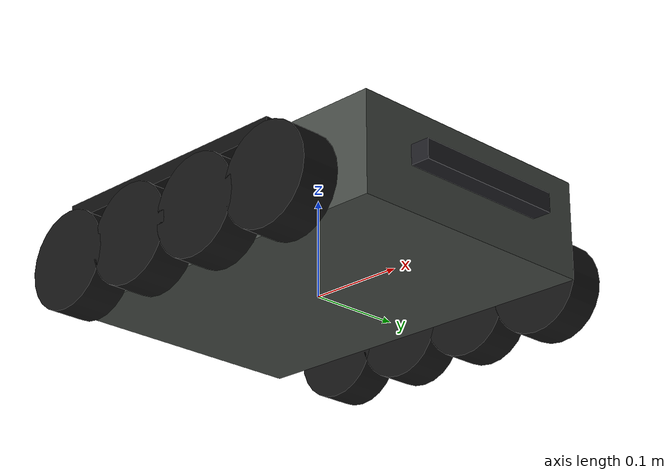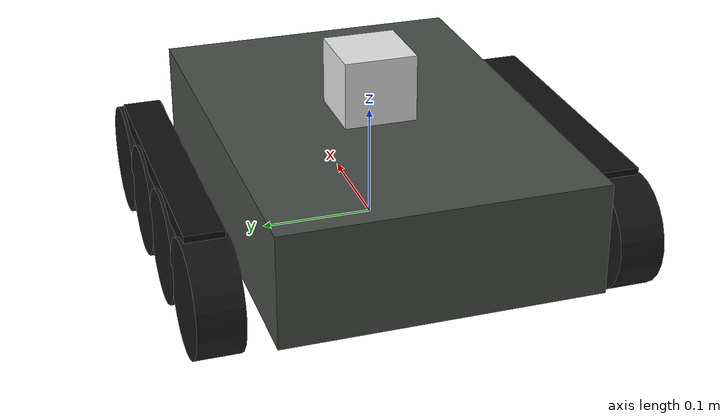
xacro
<?xml version="1.0" encoding="UTF-8"?>
<robot name="tracked_robot" xmlns:xacro="http://www.ros.org/wiki/xacro">

  <xacro:include filename="$(find multimap_nav_simulation)/robot/sensors/lidar_3d.xacro"/>
  <xacro:include filename="$(find multimap_nav_simulation)/robot/sensors/mid360_timed.xacro"/>
  <xacro:include filename="$(find multimap_nav_simulation)/robot/sensors/imu.xacro"/>
  <xacro:include filename="$(find multimap_nav_simulation)/robot/sensors/depth_camera.xacro"/>

  <!-- 仿真横向摩擦标定：原1.3会在坡地锁住8轮差速转向。
       0.3为当前仿真设置，保留纵向摩擦6.0；不是实体履带摩擦测量值。 -->
  <xacro:arg name="lateral_friction" default="0.3"/>
  <xacro:arg name="lidar_model" default="mid360"/>
  <xacro:arg name="lidar_noise_seed" default="0"/>
  <xacro:arg name="publish_ground_truth" default="true"/>
  <xacro:arg name="cmd_vel_topic" default="/cmd_vel"/>

  <!-- ========================== 尺寸与质量 ========================== -->
  <!-- 底盘：长 0.40 m、宽 0.28 m、高 0.10 m，与圆柱差速车占地接近 -->
  <xacro:property name="chassis_length" value="0.40"/>
  <xacro:property name="chassis_width"  value="0.28"/>
  <xacro:property name="chassis_height" value="0.10"/>
  <!-- 约 0.4 m 级履带车：整车约 38 kg，避免轻质量 + 多轮大扭矩被顶飞 -->
  <xacro:property name="chassis_mass"   value="30.0"/>

  <xacro:property name="wheel_radius"     value="0.05"/>
  <xacro:property name="wheel_length"     value="0.04"/>
  <xacro:property name="wheel_mass"       value="1.0"/>
  <xacro:property name="wheel_separation" value="0.36"/>  <!-- 左右轮心距 -->
  <xacro:property name="ground_clearance" value="0.03"/>  <!-- 底盘底面离地 -->
  <!-- 38 kg 车在坡上锁轮/爬坡：单轮 1 N·m 只能提供约 20 N，8 轮全着地也只够约 25°。
       取 8 N·m（约 160 N/轮）留出不平整接触余量；加速度仍由 controller 限制，避免再顶飞。 -->
  <xacro:property name="wheel_effort"     value="8.0"/>
  <xacro:property name="wheel_vel_limit"  value="40.0"/>  <!-- rad/s ≈ 2.0 m/s -->

  <!-- 同侧 4 轮沿 x 均布，轮径 0.10 m、间距 0.09 m，互不嵌入 -->
  <xacro:property name="wheel_x_1" value="0.135"/>
  <xacro:property name="wheel_x_2" value="0.045"/>
  <xacro:property name="wheel_x_3" value="-0.045"/>
  <xacro:property name="wheel_x_4" value="-0.135"/>

  <!-- ========================== 底盘 ========================== -->
  <!-- base_link 原点在底盘底面中心；底盘几何沿 +z 长出 chassis_height -->
  <link name="base_link">
    <inertial>
      <!-- 质心略低于几何中心，减少加速时抬头/翻车 -->
      <origin xyz="0 0 ${chassis_height * 0.35}" rpy="0 0 0"/>
      <mass value="${chassis_mass}"/>
      <inertia
        ixx="${chassis_mass / 12.0 * (chassis_width * chassis_width + chassis_height * chassis_height)}"
        iyy="${chassis_mass / 12.0 * (chassis_length * chassis_length + chassis_height * chassis_height)}"
        izz="${chassis_mass / 12.0 * (chassis_length * chassis_length + chassis_width * chassis_width)}"
        ixy="0.0" ixz="0.0" iyz="0.0"/>
    </inertial>

    <visual>
      <origin xyz="0 0 ${chassis_height / 2.0}" rpy="0 0 0"/>
      <geometry>
        <box size="${chassis_length} ${chassis_width} ${chassis_height}"/>
      </geometry>
      <material name="tracked_grey">
        <color rgba="0.28 0.30 0.28 1.0"/>
      </material>
    </visual>

    <collision>
      <origin xyz="0 0 ${chassis_height / 2.0}" rpy="0 0 0"/>
      <geometry>
        <box size="${chassis_length} ${chassis_width} ${chassis_height}"/>
      </geometry>
    </collision>
  </link>

  <gazebo reference="base_link">
    <!-- 离地仅 3 cm，陡坡上底盘可能蹭地。摩擦保持较低，避免蹭地时额外锁住转向。 -->
    <mu1>0.6</mu1>
    <mu2>0.6</mu2>
    <kp>1e6</kp>
    <kd>100.0</kd>
    <gravity>true</gravity>
    <material>Gazebo/DarkGrey</material>
  </gazebo>

  <!-- ========================== 履带承重轮 ========================== -->
  <!-- 圆柱默认轴沿 z，visual/collision 绕 x 转 90° 使轴沿 y（车宽方向）。
       惯性按 link 系（关节轴 y）给出：iyy 为自转惯量。 -->
  <xacro:macro name="track_wheel" params="side index x_pos y_pos radius:=${wheel_radius} parent:=base_link">
    <joint name="${side}_wheel_${index}_joint" type="continuous">
      <parent link="${parent}"/>
      <child link="${side}_wheel_${index}_link"/>
      <origin xyz="${x_pos} ${y_pos} ${radius - ground_clearance}" rpy="0 0 0"/>
      <axis xyz="0 1 0"/>
      <limit effort="${wheel_effort}" velocity="${wheel_vel_limit}"/>
      <!-- 驱动力由地面接触产生；过大关节阻尼会消耗速度电机的大部分力矩。 -->
      <dynamics damping="0.02" friction="0.0"/>
    </joint>

    <link name="${side}_wheel_${index}_link">
      <inertial>
        <origin xyz="0 0 0" rpy="0 0 0"/>
        <mass value="${wheel_mass}"/>
        <inertia
          ixx="${wheel_mass / 12.0 * (3.0 * radius * radius + wheel_length * wheel_length)}"
          iyy="${0.5 * wheel_mass * radius * radius}"
          izz="${wheel_mass / 12.0 * (3.0 * radius * radius + wheel_length * wheel_length)}"
          ixy="0.0" ixz="0.0" iyz="0.0"/>
      </inertial>

      <visual>
        <origin xyz="0 0 0" rpy="${pi/2.0} 0 0"/>
        <geometry>
          <cylinder radius="${radius}" length="${wheel_length}"/>
        </geometry>
        <material name="track_rubber">
          <color rgba="0.08 0.08 0.08 1.0"/>
        </material>
      </visual>

      <!-- 外观仍用圆柱；碰撞用同半径球体。ODE 圆柱对 STL 三角网格在坡上
           经常只打到侧面接触点，表现为间歇打滑。球体–三角网格接触更稳定。 -->
      <collision>
        <origin xyz="0 0 0" rpy="0 0 0"/>
        <geometry>
          <sphere radius="${radius}"/>
        </geometry>
      </collision>
    </link>

    <gazebo reference="${side}_wheel_${index}_link">
      <!-- fdir1 必须沿轮轴 Y：绕 Y 转动时该轴不变，摩擦锥不会被转进地面法向。
           旧的 fdir1=1 0 0 会随轮子转，坡上抓地力周期性丢失。
           ODE：mu1 沿 fdir1（车体横向），mu2 沿 fdir1×法向（坡面纵向）。
           8 轮差速转向时前后轮必须侧滑，横向摩擦不能和纵向一样高。 -->
      <fdir1>0 1 0</fdir1>
      <mu1>$(arg lateral_friction)</mu1>
      <mu2>6.0</mu2>
      <slip1>0.05</slip1>
      <slip2>0.0</slip2>
      <kp>1e6</kp>
      <kd>100.0</kd>
      <maxVel>0.1</maxVel>
      <minDepth>0.001</minDepth>
      <maxContacts>8</maxContacts>
      <implicitSpringDamper>true</implicitSpringDamper>
      <material>Gazebo/FlatBlack</material>
    </gazebo>
  </xacro:macro>

  <!-- 所有受控轮必须使用同一滚动半径。否则 diff_drive_controller 下发相同
       角速度时，不同半径会要求不同的地面速度，接触约束会互相打架并把车体顶起。 -->
  <xacro:track_wheel side="left"  index="1" x_pos="${wheel_x_1}" y_pos="${ wheel_separation / 2.0}"/>
  <xacro:track_wheel side="left"  index="2" x_pos="${wheel_x_2}" y_pos="${ wheel_separation / 2.0}"/>
  <xacro:track_wheel side="left"  index="3" x_pos="${wheel_x_3}" y_pos="${ wheel_separation / 2.0}"/>
  <xacro:track_wheel side="left"  index="4" x_pos="${wheel_x_4}" y_pos="${ wheel_separation / 2.0}"/>
  <xacro:track_wheel side="right" index="1" x_pos="${wheel_x_1}" y_pos="${-wheel_separation / 2.0}"/>
  <xacro:track_wheel side="right" index="2" x_pos="${wheel_x_2}" y_pos="${-wheel_separation / 2.0}"/>
  <xacro:track_wheel side="right" index="3" x_pos="${wheel_x_3}" y_pos="${-wheel_separation / 2.0}"/>
  <xacro:track_wheel side="right" index="4" x_pos="${wheel_x_4}" y_pos="${-wheel_separation / 2.0}"/>

  <!-- 不再用贴地长方体模拟履带：Gazebo 常把 visual 当成碰撞，
       前端铲地会把车绕前缘掀起来（前进时尾部翘起）。
       物理只靠 8 个承重轮；外观用轮子上方一条细带，明确离地、无碰撞。 -->
  <xacro:macro name="track_visual" params="side y_pos">
    <xacro:property name="track_vis_mass" value="0.05"/>
    <xacro:property name="track_vis_x"    value="0.27"/>
    <xacro:property name="track_vis_y"    value="${wheel_length * 0.85}"/>
    <xacro:property name="track_vis_z"    value="0.016"/>
    <link name="${side}_track_visual_link">
      <inertial>
        <mass value="${track_vis_mass}"/>
        <origin xyz="0 0 0" rpy="0 0 0"/>
        <inertia
          ixx="${track_vis_mass / 12.0 * (track_vis_y * track_vis_y + track_vis_z * track_vis_z)}"
          iyy="${track_vis_mass / 12.0 * (track_vis_x * track_vis_x + track_vis_z * track_vis_z)}"
          izz="${track_vis_mass / 12.0 * (track_vis_x * track_vis_x + track_vis_y * track_vis_y)}"
          ixy="0.0" ixz="0.0" iyz="0.0"/>
      </inertial>
      <visual>
        <origin xyz="0 0 0" rpy="0 0 0"/>
        <geometry>
          <box size="${track_vis_x} ${track_vis_y} ${track_vis_z}"/>
        </geometry>
        <material name="track_belt">
          <color rgba="0.06 0.06 0.06 1.0"/>
        </material>
      </visual>
    </link>

    <joint name="${side}_track_visual_joint" type="fixed">
      <parent link="base_link"/>
      <child link="${side}_track_visual_link"/>
      <!-- 放在轮子顶部，底面约离地 8 cm，即使误生成碰撞也不会铲地 -->
      <origin xyz="0 ${y_pos} ${wheel_radius - ground_clearance + wheel_radius - 0.002}" rpy="0 0 0"/>
    </joint>

    <gazebo reference="${side}_track_visual_link">
      <mu1>0.0</mu1>
      <mu2>0.0</mu2>
      <kp>0.0</kp>
      <kd>0.0</kd>
      <maxContacts>0</maxContacts>
      <material>Gazebo/Black</material>
    </gazebo>
  </xacro:macro>

  <xacro:track_visual side="left"  y_pos="${ wheel_separation / 2.0}"/>
  <xacro:track_visual side="right" y_pos="${-wheel_separation / 2.0}"/>

  <!-- ========================== 传感器 ========================== -->
  <!-- 雷达坐在底盘顶面中心；话题 /points_raw，frame lidar_link -->
  <xacro:if value="${'$(arg lidar_model)' == 'mid360'}">
    <xacro:mid360_timed parent="base_link" xyz="0 0 ${chassis_height + 0.030}"
                       rpy="0 0 0" noise_seed="$(arg lidar_noise_seed)"/>
  </xacro:if>
  <xacro:unless value="${'$(arg lidar_model)' == 'mid360'}">
    <xacro:lidar_3d parent="base_link" xyz="0 0 ${chassis_height + lidar_height / 2.0}" rpy="0 0 0"/>
  </xacro:unless>

  <!-- 前装深度相机：底盘前端 x=0.20 + 半厚 0.01 -->
  <xacro:depth_camera name="depth_camera" parent="base_link"
                      xyz="${chassis_length / 2.0 + depth_camera_x / 2.0} 0 ${chassis_height * 0.55}"
                      rpy="0 0 0" width="320" height="240"/>

  <!-- IMU 在底盘内部中心；话题 /livox/imu_raw，frame imu_link -->
  <xacro:imu parent="base_link" xyz="0 0 ${chassis_height / 2.0}" rpy="0 0 0"/>

  <!-- ========================== Gazebo P3D 地面真值里程计 ========================== -->
  <xacro:if value="$(arg publish_ground_truth)">
  <gazebo>
    <plugin name="gazebo_ros_p3d" filename="libgazebo_ros_p3d.so">
      <ros>
        <remapping>odom:=/evaluation/ground_truth</remapping>
      </ros>
      <body_name>base_link</body_name>
      <update_rate>100</update_rate>
    </plugin>
  </gazebo>
  </xacro:if>

  <!-- ========================== 传动 ========================== -->
  <xacro:macro name="wheel_transmission" params="joint_name">
    <transmission name="${joint_name}_trans">
      <type>transmission_interface/SimpleTransmission</type>
      <joint name="${joint_name}">
        <hardwareInterface>hardware_interface/VelocityJointInterface</hardwareInterface>
      </joint>
      <actuator name="${joint_name}_motor">
        <hardwareInterface>hardware_interface/VelocityJointInterface</hardwareInterface>
        <mechanicalReduction>1</mechanicalReduction>
      </actuator>
    </transmission>
  </xacro:macro>

  <xacro:wheel_transmission joint_name="left_wheel_1_joint"/>
  <xacro:wheel_transmission joint_name="left_wheel_2_joint"/>
  <xacro:wheel_transmission joint_name="left_wheel_3_joint"/>
  <xacro:wheel_transmission joint_name="left_wheel_4_joint"/>
  <xacro:wheel_transmission joint_name="right_wheel_1_joint"/>
  <xacro:wheel_transmission joint_name="right_wheel_2_joint"/>
  <xacro:wheel_transmission joint_name="right_wheel_3_joint"/>
  <xacro:wheel_transmission joint_name="right_wheel_4_joint"/>

  <!-- ========================== ros2_control ========================== -->
  <ros2_control name="GazeboSystem" type="system">
    <hardware>
      <plugin>gazebo_ros2_control/GazeboSystem</plugin>
    </hardware>

    <joint name="left_wheel_1_joint">
      <command_interface name="velocity"/>
      <state_interface name="position"/>
      <state_interface name="velocity"/>
    </joint>
    <joint name="left_wheel_2_joint">
      <command_interface name="velocity"/>
      <state_interface name="position"/>
      <state_interface name="velocity"/>
    </joint>
    <joint name="left_wheel_3_joint">
      <command_interface name="velocity"/>
      <state_interface name="position"/>
      <state_interface name="velocity"/>
    </joint>
    <joint name="left_wheel_4_joint">
      <command_interface name="velocity"/>
      <state_interface name="position"/>
      <state_interface name="velocity"/>
    </joint>
    <joint name="right_wheel_1_joint">
      <command_interface name="velocity"/>
      <state_interface name="position"/>
      <state_interface name="velocity"/>
    </joint>
    <joint name="right_wheel_2_joint">
      <command_interface name="velocity"/>
      <state_interface name="position"/>
      <state_interface name="velocity"/>
    </joint>
    <joint name="right_wheel_3_joint">
      <command_interface name="velocity"/>
      <state_interface name="position"/>
      <state_interface name="velocity"/>
    </joint>
    <joint name="right_wheel_4_joint">
      <command_interface name="velocity"/>
      <state_interface name="position"/>
      <state_interface name="velocity"/>
    </joint>
  </ros2_control>

  <gazebo>
    <plugin name="gazebo_ros2_control" filename="libgazebo_ros2_control.so">
      <parameters>$(find multimap_nav_simulation)/config/tracked_robot.yaml</parameters>
      <ros>
        <remapping>/diff_drive_controller/cmd_vel_unstamped:=$(arg cmd_vel_topic)</remapping>
        <remapping>/diff_drive_controller/odom:=/odom_diff_drive</remapping>
      </ros>
    </plugin>
  </gazebo>

</robot>

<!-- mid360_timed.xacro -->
<robot xmlns:xacro="http://www.ros.org/wiki/xacro">
  <!-- Nominal geometry/rate; 200 rays per 1 ms update, 100 ms packets.
       The CSV specifies direction order, not hardware channel IDs or time. -->
  <xacro:macro name="mid360_timed" params="parent xyz rpy noise_seed:=0">
    <joint name="lidar_joint" type="fixed">
      <parent link="${parent}"/><child link="lidar_link"/>
      <origin xyz="${xyz}" rpy="${rpy}"/>
    </joint>
    <link name="lidar_link">
      <inertial>
        <mass value="0.265"/><origin xyz="0 0 0"/>
        <inertia ixx="${0.265*(0.065**2+0.060**2)/12}" ixy="0" ixz="0"
                 iyy="${0.265*(0.065**2+0.060**2)/12}" iyz="0"
                 izz="${0.265*(2*0.065**2)/12}"/>
      </inertial>
      <visual><geometry><box size="0.065 0.065 0.060"/></geometry>
        <material name="mid360_white"><color rgba="0.9 0.9 0.9 1"/></material>
      </visual>
      <collision><geometry><box size="0.065 0.065 0.060"/></geometry></collision>
    </link>
    <gazebo reference="lidar_link">
      <sensor name="lidar_link" type="ray">
        <always_on>true</always_on><visualize>false</visualize>
        <update_rate>1000</update_rate>
        <plugin name="mid360_timed" filename="libmultimap_mid360.so">
          <ray>
            <scan>
              <horizontal><samples>200</samples><resolution>1</resolution>
                <min_angle>0</min_angle><max_angle>${2*pi}</max_angle></horizontal>
              <vertical><samples>1</samples><resolution>1</resolution>
                <min_angle>${-7*pi/180}</min_angle><max_angle>${52*pi/180}</max_angle></vertical>
            </scan>
            <range><min>0.1</min><max>40.0</max><resolution>0.002</resolution></range>
          </ray>
          <visualize>false</visualize><samples>200</samples><downsample>1</downsample>
          <csv_file_name>$(find ros2_livox_simulation)/scan_mode/mid360.csv</csv_file_name>
          <topic>/livox/lidar</topic>
          <time_resolved>true</time_resolved><frame_duration>0.1</frame_duration>
          <range_noise_stddev>0.02</range_noise_stddev><noise_seed>${noise_seed}</noise_seed>
        </plugin>
      </sensor>
    </gazebo>
  </xacro:macro>
</robot>

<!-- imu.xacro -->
<robot xmlns:xacro="http://www.ros.org/wiki/xacro">

  <xacro:property name="imu_mass"   value="0.0018518519"/> <!-- 0.05 / 27 kg -->
  <xacro:property name="imu_size"   value="0.01"/>  <!-- 小方块边长，为原尺寸的 1/3 -->
  <xacro:property name="imu_hz"     value="200.0"/> <!-- IMU 更新频率 -->

  <xacro:macro name="imu" params="parent:=base_link xyz:='0 0 0.1' rpy:='0 0 0'">
    <link name="imu_link">
      <inertial>
        <mass value="${imu_mass}"/>
        <origin xyz="0 0 0" rpy="0 0 0"/>
        <inertia
          ixx="${imu_mass * imu_size * imu_size / 6.0}"
          iyy="${imu_mass * imu_size * imu_size / 6.0}"
          izz="${imu_mass * imu_size * imu_size / 6.0}"
          ixy="0.0" ixz="0.0" iyz="0.0"/>
      </inertial>

      <visual>
        <origin xyz="0 0 0" rpy="0 0 0"/>
        <geometry>
          <box size="${imu_size} ${imu_size} ${imu_size}"/>
        </geometry>
        <material name="red">
          <color rgba="0.8 0.1 0.1 1.0"/>
        </material>
      </visual>

      <collision>
        <origin xyz="0 0 0" rpy="0 0 0"/>
        <geometry>
          <box size="${imu_size} ${imu_size} ${imu_size}"/>
        </geometry>
      </collision>
    </link>

    <joint name="imu_joint" type="fixed">
      <parent link="${parent}"/>
      <child link="imu_link"/>
      <origin xyz="${xyz}" rpy="${rpy}"/>
    </joint>

    <!-- Gazebo IMU 传感器插件 -->
    <gazebo reference="imu_link">
      <sensor name="imu_sensor" type="imu">
        <always_on>true</always_on>
        <pose>0 0 0 0 0 0</pose>
        <update_rate>${imu_hz}</update_rate>

        <imu>
          <angular_velocity>
            <x>
              <noise type="gaussian">
                <mean>0.0</mean>
                <stddev>0.0003</stddev>
              </noise>
            </x>
            <y>
              <noise type="gaussian">
                <mean>0.0</mean>
                <stddev>0.0003</stddev>
              </noise>
            </y>
            <z>
              <noise type="gaussian">
                <mean>0.0</mean>
                <stddev>0.0003</stddev>
              </noise>
            </z>
          </angular_velocity>
          <linear_acceleration>
            <x>
              <noise type="gaussian">
                <mean>0.0</mean>
                <stddev>0.01</stddev>   <!-- ~0.01 m/s² -->
              </noise>
            </x>
            <y>
              <noise type="gaussian">
                <mean>0.0</mean>
                <stddev>0.01</stddev>
              </noise>
            </y>
            <z>
              <noise type="gaussian">
                <mean>0.0</mean>
                <stddev>0.01</stddev>
              </noise>
            </z>
          </linear_acceleration>
        </imu>

        <plugin name="imu_controller" filename="libgazebo_ros_imu_sensor.so">
          <ros>
            <remapping>~/out:=/livox/imu_raw</remapping>
          </ros>
          <frame_name>imu_link</frame_name>
        </plugin>
      </sensor>
    </gazebo>
  </xacro:macro>

</robot>

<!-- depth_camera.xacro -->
<robot xmlns:xacro="http://www.ros.org/wiki/xacro">

  <xacro:property name="depth_camera_x"     value="0.02"/>          <!-- 前后厚度 [m] -->
  <xacro:property name="depth_camera_y"     value="0.1666666667"/>  <!-- 左右长度 [m] -->
  <xacro:property name="depth_camera_z"     value="0.02"/>          <!-- 高度 [m] -->
  <xacro:property name="depth_camera_mass"  value="0.0111111111"/>  <!-- 0.30 / 27 kg -->

  <xacro:property name="depth_camera_hfov"  value="1.3963"/> <!-- 水平视场角 80° [rad] -->
  <xacro:property name="depth_camera_w"     value="640"/>    <!-- 图像宽度 [px] -->
  <xacro:property name="depth_camera_h"     value="480"/>    <!-- 图像高度 [px] -->
  <xacro:property name="depth_camera_hz"    value="10.0"/>   <!-- 更新频率 [Hz] -->
  <xacro:property name="depth_camera_near"  value="0.05"/>   <!-- 最近有效距离 [m] -->
  <xacro:property name="depth_camera_far"   value="8.0"/>    <!-- 最远有效距离 [m] -->

  <xacro:macro name="depth_camera" params="name:='depth_camera' parent:='base_link' xyz:='0.21 0 0.06' rpy:='0 0 0' width:=${depth_camera_w} height:=${depth_camera_h}">

    <!-- ========================== 相机本体 link ========================== -->
    <link name="${name}_link">
      <inertial>
        <mass value="${depth_camera_mass}"/>
        <origin xyz="0 0 0" rpy="0 0 0"/>
        <inertia
          ixx="${depth_camera_mass / 12.0 * (depth_camera_y * depth_camera_y + depth_camera_z * depth_camera_z)}"
          iyy="${depth_camera_mass / 12.0 * (depth_camera_x * depth_camera_x + depth_camera_z * depth_camera_z)}"
          izz="${depth_camera_mass / 12.0 * (depth_camera_x * depth_camera_x + depth_camera_y * depth_camera_y)}"
          ixy="0.0" ixz="0.0" iyz="0.0"/>
      </inertial>

      <visual>
        <origin xyz="0 0 0" rpy="0 0 0"/>
        <geometry>
          <box size="${depth_camera_x} ${depth_camera_y} ${depth_camera_z}"/>
        </geometry>
        <material name="camera_dark">
          <color rgba="0.12 0.12 0.14 1.0"/>
        </material>
      </visual>

      <collision>
        <origin xyz="0 0 0" rpy="0 0 0"/>
        <geometry>
          <box size="${depth_camera_x} ${depth_camera_y} ${depth_camera_z}"/>
        </geometry>
      </collision>
    </link>

    <!-- ========================== 相机安装 joint ========================== -->
    <joint name="${name}_joint" type="fixed">
      <parent link="${parent}"/>
      <child link="${name}_link"/>
      <origin xyz="${xyz}" rpy="${rpy}"/>
    </joint>

    <!-- ========================== optical link ========================== -->
    <!-- 相对本体前移半个厚度，光心位于长方体前表面中心；
         rpy=-pi/2,0,-pi/2 将 optical 系的 +Z 指向机器人正前方 -->
    <link name="${name}_optical_link">
      <inertial>
        <mass value="0.001"/>
        <origin xyz="0 0 0" rpy="0 0 0"/>
        <inertia ixx="1e-6" iyy="1e-6" izz="1e-6" ixy="0.0" ixz="0.0" iyz="0.0"/>
      </inertial>
    </link>

    <joint name="${name}_optical_joint" type="fixed">
      <parent link="${name}_link"/>
      <child link="${name}_optical_link"/>
      <origin xyz="${depth_camera_x / 2.0} 0 0" rpy="${-pi/2.0} 0 ${-pi/2.0}"/>
    </joint>

    <!-- ========================== Gazebo 深度相机传感器 ========================== -->
    <!-- 传感器挂在 optical link 上，pose 为 0，Gazebo 沿该 link 的 +Z 出射线，
         因此点云天然位于 camera_optical_link 系且 FOV 朝前。 -->
    <gazebo reference="${name}_link">
      <sensor type="depth" name="${name}_sensor">
        <pose>0 0 0 0 0 0</pose>
        <always_on>true</always_on>
        <update_rate>${depth_camera_hz}</update_rate>
        <visualize>false</visualize>

        <camera>
          <horizontal_fov>${depth_camera_hfov}</horizontal_fov>
          <image>
            <width>${width}</width>
            <height>${height}</height>
            <format>R8G8B8</format>
          </image>
          <clip>
            <near>${depth_camera_near}</near>
            <far>${depth_camera_far}</far>
          </clip>
          <noise>
            <type>gaussian</type>
            <mean>0.0</mean>
            <stddev>0.005</stddev>
          </noise>
        </camera>

        <!-- Humble 的 depth 传感器由 libgazebo_ros_camera.so 统一支持
             （gazebo_plugins 中没有单独的 depth 插件） -->
        <plugin name="${name}_controller" filename="libgazebo_ros_camera.so">
          <ros>
            <remapping>${name}/image_raw:=/${name}/color/image_raw</remapping>
            <remapping>${name}/depth/image_raw:=/${name}/depth/image_raw</remapping>
            <remapping>${name}/camera_info:=/${name}/color/camera_info</remapping>
            <remapping>${name}/depth/camera_info:=/${name}/depth/camera_info</remapping>
            <remapping>${name}/points:=/${name}/depth/points</remapping>
          </ros>
          <camera_name>${name}</camera_name>
          <frame_name>${name}_optical_link</frame_name>
          <min_depth>${depth_camera_near}</min_depth>
          <max_depth>${depth_camera_far}</max_depth>
        </plugin>
      </sensor>
    </gazebo>

  </xacro:macro>

</robot>
